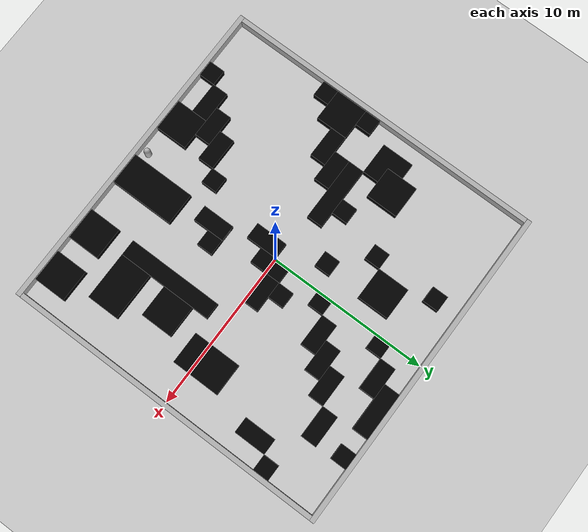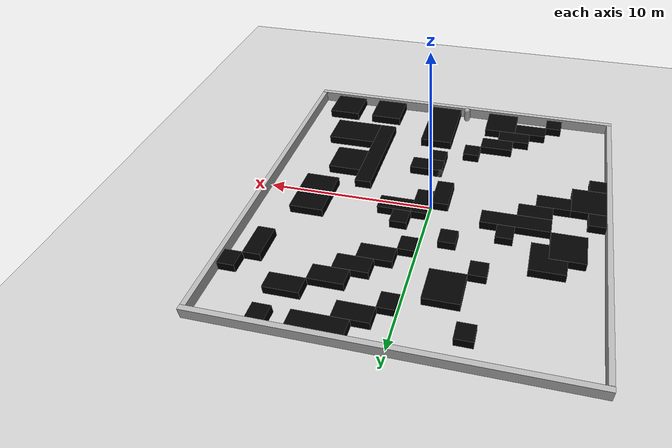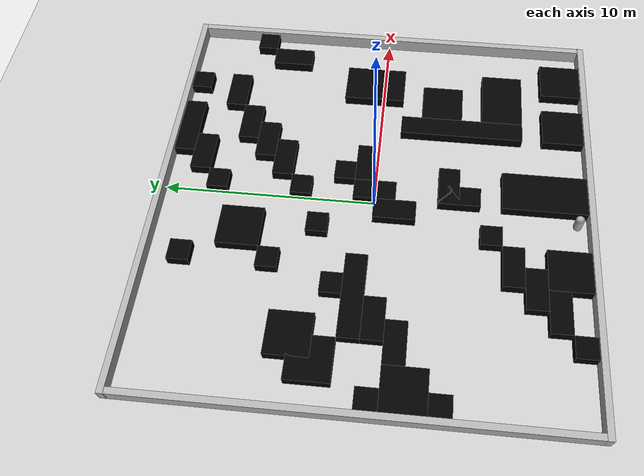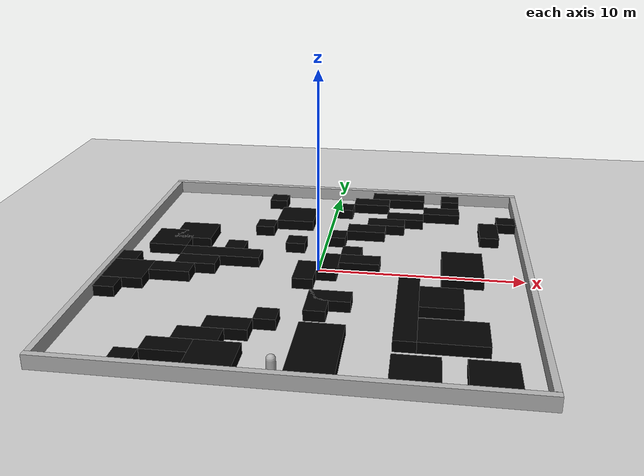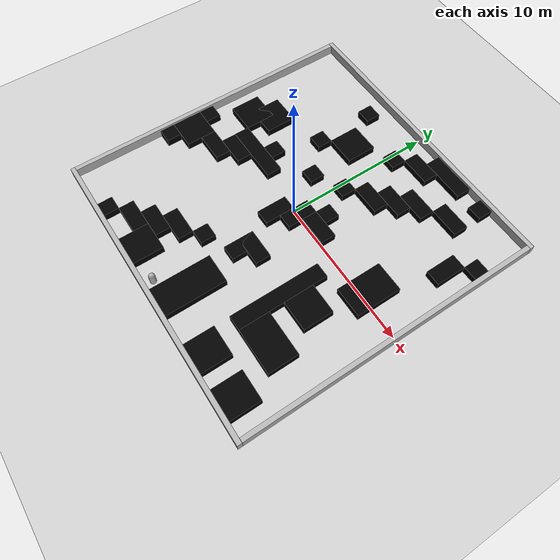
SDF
<sdf version='1.10'>
  <world name='empty'>
    <physics name='1ms' type='ignored'>
      <max_step_size>0.001</max_step_size>
      <real_time_factor>2</real_time_factor>
      <real_time_update_rate>0</real_time_update_rate>
      <type>bullet</type>
    </physics>
    <plugin name='gz::sim::systems::Physics' filename='gz-sim-physics-system'/>
    <plugin name='gz::sim::systems::UserCommands' filename='gz-sim-user-commands-system'/>
    <plugin name='gz::sim::systems::SceneBroadcaster' filename='gz-sim-scene-broadcaster-system'/>
    <plugin name='gz::sim::systems::Contact' filename='gz-sim-contact-system'/>
    <gravity>0 0 -9.8000000000000007</gravity>
    <magnetic_field>5.5644999999999998e-06 2.2875799999999999e-05 -4.2388400000000002e-05</magnetic_field>
    <atmosphere type='adiabatic'/>
    <scene>
      <ambient>0.400000006 0.400000006 0.400000006 1</ambient>
      <background>0.699999988 0.699999988 0.699999988 1</background>
      <shadows>true</shadows>
    </scene>
    <model name='ground_plane'>
      <static>true</static>
      <link name='link'>
        <collision name='collision'>
          <geometry>
            <plane>
              <normal>0 0 1</normal>
              <size>100 100</size>
            </plane>
          </geometry>
          <surface>
            <friction>
              <ode/>
            </friction>
            <bounce/>
            <contact/>
          </surface>
        </collision>
        <visual name='visual'>
          <geometry>
            <plane>
              <normal>0 0 1</normal>
              <size>100 100</size>
            </plane>
          </geometry>
          <material>
            <ambient>0.800000012 0.800000012 0.800000012 1</ambient>
            <diffuse>0.800000012 0.800000012 0.800000012 1</diffuse>
            <specular>0.800000012 0.800000012 0.800000012 1</specular>
          </material>
        </visual>
        <pose>0 0 0 0 0 0</pose>
        <inertial>
          <pose>0 0 0 0 0 0</pose>
          <mass>100</mass>
          <inertia>
            <ixx>1</ixx>
            <ixy>0</ixy>
            <ixz>0</ixz>
            <iyy>1</iyy>
            <iyz>0</iyz>
            <izz>1</izz>
          </inertia>
        </inertial>
        <enable_wind>false</enable_wind>
      </link>
      <pose>0 0 0 0 0 0</pose>
      <self_collide>false</self_collide>
    </model>
    <model name='left_wall'>
      <pose>-10.15 0 0.14999999999999999 0 0 0</pose>
      <link name='left_wall_link'>
        <inertial>
          <inertia>
            <ixx>0.16666</ixx>
            <ixy>0</ixy>
            <ixz>0</ixz>
            <iyy>0.16666</iyy>
            <iyz>0</iyz>
            <izz>0.16666</izz>
          </inertia>
          <mass>1</mass>
          <pose>0 0 0 0 0 0</pose>
        </inertial>
        <collision name='left_wall_collision'>
          <geometry>
            <box>
              <size>0.29999999999999999 20 1</size>
            </box>
          </geometry>
          <surface>
            <friction>
              <ode/>
            </friction>
            <bounce/>
            <contact/>
          </surface>
        </collision>
        <visual name='left_wall_visual'>
          <geometry>
            <box>
              <size>0.29999999999999999 20 1</size>
            </box>
          </geometry>
          <material>
            <ambient>0.300000012 0.300000012 0.300000012 1</ambient>
            <diffuse>0.699999988 0.699999988 0.699999988 1</diffuse>
            <specular>1 1 1 1</specular>
          </material>
        </visual>
        <pose>0 0 0 0 0 0</pose>
        <enable_wind>false</enable_wind>
      </link>
      <static>true</static>
      <self_collide>false</self_collide>
    </model>
    <model name='right_wall'>
      <pose>10.15 0 0.14999999999999999 0 0 0</pose>
      <link name='right_wall_link'>
        <inertial>
          <inertia>
            <ixx>0.16666</ixx>
            <ixy>0</ixy>
            <ixz>0</ixz>
            <iyy>0.16666</iyy>
            <iyz>0</iyz>
            <izz>0.16666</izz>
          </inertia>
          <mass>100</mass>
          <pose>0 0 0 0 0 0</pose>
        </inertial>
        <collision name='right_wall_collision'>
          <geometry>
            <box>
              <size>0.29999999999999999 20 1</size>
            </box>
          </geometry>
          <surface>
            <friction>
              <ode/>
            </friction>
            <bounce/>
            <contact/>
          </surface>
        </collision>
        <visual name='right_wall_visual'>
          <geometry>
            <box>
              <size>0.29999999999999999 20 1</size>
            </box>
          </geometry>
          <material>
            <ambient>0.300000012 0.300000012 0.300000012 1</ambient>
            <diffuse>0.699999988 0.699999988 0.699999988 1</diffuse>
            <specular>1 1 1 1</specular>
          </material>
        </visual>
        <pose>0 0 0 0 0 0</pose>
        <enable_wind>false</enable_wind>
      </link>
      <static>true</static>
      <self_collide>false</self_collide>
    </model>
    <model name='top_wall'>
      <pose>0 10.15 0.14999999999999999 0 0 1.5699999999999998</pose>
      <link name='top_wall_link'>
        <inertial>
          <inertia>
            <ixx>0.16666</ixx>
            <ixy>0</ixy>
            <ixz>0</ixz>
            <iyy>0.16666</iyy>
            <iyz>0</iyz>
            <izz>0.16666</izz>
          </inertia>
          <mass>100</mass>
          <pose>0 0 0 0 0 0</pose>
        </inertial>
        <collision name='top_wall_collision'>
          <geometry>
            <box>
              <size>0.29999999999999999 20 1</size>
            </box>
          </geometry>
          <surface>
            <friction>
              <ode/>
            </friction>
            <bounce/>
            <contact/>
          </surface>
        </collision>
        <visual name='top_wall_visual'>
          <geometry>
            <box>
              <size>0.29999999999999999 20.600000000000001 1</size>
            </box>
          </geometry>
          <material>
            <ambient>0.300000012 0.300000012 0.300000012 1</ambient>
            <diffuse>0.699999988 0.699999988 0.699999988 1</diffuse>
            <specular>1 1 1 1</specular>
          </material>
        </visual>
        <pose>0 0 0 0 0 0</pose>
        <enable_wind>false</enable_wind>
      </link>
      <static>true</static>
      <self_collide>false</self_collide>
    </model>
    <model name='bottom_wall'>
      <pose>0 -10.15 0.14999999999999999 0 0 1.5699999999999998</pose>
      <link name='bottom_wall_link'>
        <inertial>
          <inertia>
            <ixx>0.16666</ixx>
            <ixy>0</ixy>
            <ixz>0</ixz>
            <iyy>0.16666</iyy>
            <iyz>0</iyz>
            <izz>0.16666</izz>
          </inertia>
          <mass>100</mass>
          <pose>0 0 0 0 0 0</pose>
        </inertial>
        <collision name='bottom_wall_collision'>
          <geometry>
            <box>
              <size>0.29999999999999999 20 1</size>
            </box>
          </geometry>
          <surface>
            <friction>
              <ode/>
            </friction>
            <bounce/>
            <contact/>
          </surface>
        </collision>
        <visual name='bottom_wall_visual'>
          <geometry>
            <box>
              <size>0.29999999999999999 20.600000000000001 1</size>
            </box>
          </geometry>
          <material>
            <ambient>0.300000012 0.300000012 0.300000012 1</ambient>
            <diffuse>0.699999988 0.699999988 0.699999988 1</diffuse>
            <specular>1 1 1 1</specular>
          </material>
        </visual>
        <pose>0 0 0 0 0 0</pose>
        <enable_wind>false</enable_wind>
      </link>
      <static>true</static>
      <self_collide>false</self_collide>
    </model>
    <model name='black_box_1x1_1'>
      <static>true</static>
      <pose>6.5 9.5 0 0 0 0</pose>
      <link name='link'>
        <collision name='collision'>
          <geometry>
            <box>
              <size>1 1 1</size>
            </box>
          </geometry>
          <surface>
            <friction>
              <ode/>
            </friction>
            <bounce/>
            <contact/>
          </surface>
        </collision>
        <visual name='visual'>
          <geometry>
            <box>
              <size>1 1 1</size>
            </box>
          </geometry>
          <material>
            <ambient>0 0 0 1</ambient>
          </material>
        </visual>
        <pose>0 0 0 0 0 0</pose>
        <inertial>
          <pose>0 0 0 0 0 0</pose>
          <mass>1</mass>
          <inertia>
            <ixx>1</ixx>
            <ixy>0</ixy>
            <ixz>0</ixz>
            <iyy>1</iyy>
            <iyz>0</iyz>
            <izz>1</izz>
          </inertia>
        </inertial>
        <enable_wind>false</enable_wind>
      </link>
      <self_collide>false</self_collide>
    </model>
    <model name='black_box_1x1_2'>
      <static>true</static>
      <pose>9.5 6.5 0 0 0 0</pose>
      <link name='link'>
        <collision name='collision'>
          <geometry>
            <box>
              <size>1 1 1</size>
            </box>
          </geometry>
          <surface>
            <friction>
              <ode/>
            </friction>
            <bounce/>
            <contact/>
          </surface>
        </collision>
        <visual name='visual'>
          <geometry>
            <box>
              <size>1 1 1</size>
            </box>
          </geometry>
          <material>
            <ambient>0 0 0 1</ambient>
          </material>
        </visual>
        <pose>0 0 0 0 0 0</pose>
        <inertial>
          <pose>0 0 0 0 0 0</pose>
          <mass>1</mass>
          <inertia>
            <ixx>1</ixx>
            <ixy>0</ixy>
            <ixz>0</ixz>
            <iyy>1</iyy>
            <iyz>0</iyz>
            <izz>1</izz>
          </inertia>
        </inertial>
        <enable_wind>false</enable_wind>
      </link>
      <self_collide>false</self_collide>
    </model>
    <model name='black_box_1x1_3'>
      <static>true</static>
      <pose>1.5 1.5 0 0 0 0</pose>
      <link name='link'>
        <collision name='collision'>
          <geometry>
            <box>
              <size>1 1 1</size>
            </box>
          </geometry>
          <surface>
            <friction>
              <ode/>
            </friction>
            <bounce/>
            <contact/>
          </surface>
        </collision>
        <visual name='visual'>
          <geometry>
            <box>
              <size>1 1 1</size>
            </box>
          </geometry>
          <material>
            <ambient>0 0 0 1</ambient>
          </material>
        </visual>
        <pose>0 0 0 0 0 0</pose>
        <inertial>
          <pose>0 0 0 0 0 0</pose>
          <mass>1</mass>
          <inertia>
            <ixx>1</ixx>
            <ixy>0</ixy>
            <ixz>0</ixz>
            <iyy>1</iyy>
            <iyz>0</iyz>
            <izz>1</izz>
          </inertia>
        </inertial>
        <enable_wind>false</enable_wind>
      </link>
      <self_collide>false</self_collide>
    </model>
    <model name='black_box_1x1_4'>
      <static>true</static>
      <pose>0.5 7.5 0 0 0 0</pose>
      <link name='link'>
        <collision name='collision'>
          <geometry>
            <box>
              <size>1 1 1</size>
            </box>
          </geometry>
          <surface>
            <friction>
              <ode/>
            </friction>
            <bounce/>
            <contact/>
          </surface>
        </collision>
        <visual name='visual'>
          <geometry>
            <box>
              <size>1 1 1</size>
            </box>
          </geometry>
          <material>
            <ambient>0 0 0 1</ambient>
          </material>
        </visual>
        <pose>0 0 0 0 0 0</pose>
        <inertial>
          <pose>0 0 0 0 0 0</pose>
          <mass>1</mass>
          <inertia>
            <ixx>1</ixx>
            <ixy>0</ixy>
            <ixz>0</ixz>
            <iyy>1</iyy>
            <iyz>0</iyz>
            <izz>1</izz>
          </inertia>
        </inertial>
        <enable_wind>false</enable_wind>
      </link>
      <self_collide>false</self_collide>
    </model>
    <model name='black_box_1x1_5'>
      <static>true</static>
      <pose>0.5 3.5 0 0 0 0</pose>
      <link name='link'>
        <collision name='collision'>
          <geometry>
            <box>
              <size>1 1 1</size>
            </box>
          </geometry>
          <surface>
            <friction>
              <ode/>
            </friction>
            <bounce/>
            <contact/>
          </surface>
        </collision>
        <visual name='visual'>
          <geometry>
            <box>
              <size>1 1 1</size>
            </box>
          </geometry>
          <material>
            <ambient>0 0 0 1</ambient>
          </material>
        </visual>
        <pose>0 0 0 0 0 0</pose>
        <inertial>
          <pose>0 0 0 0 0 0</pose>
          <mass>1</mass>
          <inertia>
            <ixx>1</ixx>
            <ixy>0</ixy>
            <ixz>0</ixz>
            <iyy>1</iyy>
            <iyz>0</iyz>
            <izz>1</izz>
          </inertia>
        </inertial>
        <enable_wind>false</enable_wind>
      </link>
      <self_collide>false</self_collide>
    </model>
    <model name='black_box_1x1_6'>
      <static>true</static>
      <pose>-1.5 2.5 0 0 0 0</pose>
      <link name='link'>
        <collision name='collision'>
          <geometry>
            <box>
              <size>1 1 1</size>
            </box>
          </geometry>
          <surface>
            <friction>
              <ode/>
            </friction>
            <bounce/>
            <contact/>
          </surface>
        </collision>
        <visual name='visual'>
          <geometry>
            <box>
              <size>1 1 1</size>
            </box>
          </geometry>
          <material>
            <ambient>0 0 0 1</ambient>
          </material>
        </visual>
        <pose>0 0 0 0 0 0</pose>
        <inertial>
          <pose>0 0 0 0 0 0</pose>
          <mass>1</mass>
          <inertia>
            <ixx>1</ixx>
            <ixy>0</ixy>
            <ixz>0</ixz>
            <iyy>1</iyy>
            <iyz>0</iyz>
            <izz>1</izz>
          </inertia>
        </inertial>
        <enable_wind>false</enable_wind>
      </link>
      <self_collide>false</self_collide>
    </model>
    <model name='black_box_1x1_7'>
      <static>true</static>
      <pose>-1.5 -5.5 0 0 0 0</pose>
      <link name='link'>
        <collision name='collision'>
          <geometry>
            <box>
              <size>1 1 1</size>
            </box>
          </geometry>
          <surface>
            <friction>
              <ode/>
            </friction>
            <bounce/>
            <contact/>
          </surface>
        </collision>
        <visual name='visual'>
          <geometry>
            <box>
              <size>1 1 1</size>
            </box>
          </geometry>
          <material>
            <ambient>0 0 0 1</ambient>
          </material>
        </visual>
        <pose>0 0 0 0 0 0</pose>
        <inertial>
          <pose>0 0 0 0 0 0</pose>
          <mass>1</mass>
          <inertia>
            <ixx>1</ixx>
            <ixy>0</ixy>
            <ixz>0</ixz>
            <iyy>1</iyy>
            <iyz>0</iyz>
            <izz>1</izz>
          </inertia>
        </inertial>
        <enable_wind>false</enable_wind>
      </link>
      <self_collide>false</self_collide>
    </model>
    <model name='black_box_1x1_8'>
      <static>true</static>
      <pose>-3.5 8.5 0 0 0 0</pose>
      <link name='link'>
        <collision name='collision'>
          <geometry>
            <box>
              <size>1 1 1</size>
            </box>
          </geometry>
          <surface>
            <friction>
              <ode/>
            </friction>
            <bounce/>
            <contact/>
          </surface>
        </collision>
        <visual name='visual'>
          <geometry>
            <box>
              <size>1 1 1</size>
            </box>
          </geometry>
          <material>
            <ambient>0 0 0 1</ambient>
          </material>
        </visual>
        <pose>0 0 0 0 0 0</pose>
        <inertial>
          <pose>0 0 0 0 0 0</pose>
          <mass>1</mass>
          <inertia>
            <ixx>1</ixx>
            <ixy>0</ixy>
            <ixz>0</ixz>
            <iyy>1</iyy>
            <iyz>0</iyz>
            <izz>1</izz>
          </inertia>
        </inertial>
        <enable_wind>false</enable_wind>
      </link>
      <self_collide>false</self_collide>
    </model>
    <model name='black_box_1x1_9'>
      <static>true</static>
      <pose>-3.5 4.5 0 0 0 0</pose>
      <link name='link'>
        <collision name='collision'>
          <geometry>
            <box>
              <size>1 1 1</size>
            </box>
          </geometry>
          <surface>
            <friction>
              <ode/>
            </friction>
            <bounce/>
            <contact/>
          </surface>
        </collision>
        <visual name='visual'>
          <geometry>
            <box>
              <size>1 1 1</size>
            </box>
          </geometry>
          <material>
            <ambient>0 0 0 1</ambient>
          </material>
        </visual>
        <pose>0 0 0 0 0 0</pose>
        <inertial>
          <pose>0 0 0 0 0 0</pose>
          <mass>1</mass>
          <inertia>
            <ixx>1</ixx>
            <ixy>0</ixy>
            <ixz>0</ixz>
            <iyy>1</iyy>
            <iyz>0</iyz>
            <izz>1</izz>
          </inertia>
        </inertial>
        <enable_wind>false</enable_wind>
      </link>
      <self_collide>false</self_collide>
    </model>
    <model name='black_box_1x1_10'>
      <static>true</static>
      <pose>-4.5 1.5 0 0 0 0</pose>
      <link name='link'>
        <collision name='collision'>
          <geometry>
            <box>
              <size>1 1 1</size>
            </box>
          </geometry>
          <surface>
            <friction>
              <ode/>
            </friction>
            <bounce/>
            <contact/>
          </surface>
        </collision>
        <visual name='visual'>
          <geometry>
            <box>
              <size>1 1 1</size>
            </box>
          </geometry>
          <material>
            <ambient>0 0 0 1</ambient>
          </material>
        </visual>
        <pose>0 0 0 0 0 0</pose>
        <inertial>
          <pose>0 0 0 0 0 0</pose>
          <mass>1</mass>
          <inertia>
            <ixx>1</ixx>
            <ixy>0</ixy>
            <ixz>0</ixz>
            <iyy>1</iyy>
            <iyz>0</iyz>
            <izz>1</izz>
          </inertia>
        </inertial>
        <enable_wind>false</enable_wind>
      </link>
      <self_collide>false</self_collide>
    </model>
    <model name='black_box_1x1_11'>
      <static>true</static>
      <pose>-9.5 -0.5 0 0 0 0</pose>
      <link name='link'>
        <collision name='collision'>
          <geometry>
            <box>
              <size>1 1 1</size>
            </box>
          </geometry>
          <surface>
            <friction>
              <ode/>
            </friction>
            <bounce/>
            <contact/>
          </surface>
        </collision>
        <visual name='visual'>
          <geometry>
            <box>
              <size>1 1 1</size>
            </box>
          </geometry>
          <material>
            <ambient>0 0 0 1</ambient>
          </material>
        </visual>
        <pose>0 0 0 0 0 0</pose>
        <inertial>
          <pose>0 0 0 0 0 0</pose>
          <mass>1</mass>
          <inertia>
            <ixx>1</ixx>
            <ixy>0</ixy>
            <ixz>0</ixz>
            <iyy>1</iyy>
            <iyz>0</iyz>
            <izz>1</izz>
          </inertia>
        </inertial>
        <enable_wind>false</enable_wind>
      </link>
      <self_collide>false</self_collide>
    </model>
    <model name='black_box_1x1_12'>
      <static>true</static>
      <pose>-9.5 -3.5 0 0 0 0</pose>
      <link name='link'>
        <collision name='collision'>
          <geometry>
            <box>
              <size>1 1 1</size>
            </box>
          </geometry>
          <surface>
            <friction>
              <ode/>
            </friction>
            <bounce/>
            <contact/>
          </surface>
        </collision>
        <visual name='visual'>
          <geometry>
            <box>
              <size>1 1 1</size>
            </box>
          </geometry>
          <material>
            <ambient>0 0 0 1</ambient>
          </material>
        </visual>
        <pose>0 0 0 0 0 0</pose>
        <inertial>
          <pose>0 0 0 0 0 0</pose>
          <mass>1</mass>
          <inertia>
            <ixx>1</ixx>
            <ixy>0</ixy>
            <ixz>0</ixz>
            <iyy>1</iyy>
            <iyz>0</iyz>
            <izz>1</izz>
          </inertia>
        </inertial>
        <enable_wind>false</enable_wind>
      </link>
      <self_collide>false</self_collide>
    </model>
    <model name='black_box_1x1_13'>
      <static>true</static>
      <pose>-6.5 -9.5 0 0 0 0</pose>
      <link name='link'>
        <collision name='collision'>
          <geometry>
            <box>
              <size>1 1 1</size>
            </box>
          </geometry>
          <surface>
            <friction>
              <ode/>
            </friction>
            <bounce/>
            <contact/>
          </surface>
        </collision>
        <visual name='visual'>
          <geometry>
            <box>
              <size>1 1 1</size>
            </box>
          </geometry>
          <material>
            <ambient>0 0 0 1</ambient>
          </material>
        </visual>
        <pose>0 0 0 0 0 0</pose>
        <inertial>
          <pose>0 0 0 0 0 0</pose>
          <mass>1</mass>
          <inertia>
            <ixx>1</ixx>
            <ixy>0</ixy>
            <ixz>0</ixz>
            <iyy>1</iyy>
            <iyz>0</iyz>
            <izz>1</izz>
          </inertia>
        </inertial>
        <enable_wind>false</enable_wind>
      </link>
      <self_collide>false</self_collide>
    </model>
    <model name='black_box_1x2_1'>
      <static>true</static>
      <pose>8.5 5 0 0 0 0</pose>
      <link name='link'>
        <collision name='collision'>
          <geometry>
            <box>
              <size>1 2 1</size>
            </box>
          </geometry>
          <surface>
            <friction>
              <ode/>
            </friction>
            <bounce/>
            <contact/>
          </surface>
        </collision>
        <visual name='visual'>
          <geometry>
            <box>
              <size>1 2 1</size>
            </box>
          </geometry>
          <material>
            <ambient>0 0 0 1</ambient>
          </material>
        </visual>
        <pose>0 0 0 0 0 0</pose>
        <inertial>
          <pose>0 0 0 0 0 0</pose>
          <mass>2</mass>
          <inertia>
            <ixx>1</ixx>
            <ixy>0</ixy>
            <ixz>0</ixz>
            <iyy>1</iyy>
            <iyz>0</iyz>
            <izz>1</izz>
          </inertia>
        </inertial>
        <enable_wind>false</enable_wind>
      </link>
      <self_collide>false</self_collide>
    </model>
    <model name='black_box_1x2_2'>
      <static>true</static>
      <pose>0.5 0 0 0 0 0</pose>
      <link name='link'>
        <collision name='collision'>
          <geometry>
            <box>
              <size>1 2 1</size>
            </box>
          </geometry>
          <surface>
            <friction>
              <ode/>
            </friction>
            <bounce/>
            <contact/>
          </surface>
        </collision>
        <visual name='visual'>
          <geometry>
            <box>
              <size>1 2 1</size>
            </box>
          </geometry>
          <material>
            <ambient>0 0 0 1</ambient>
          </material>
        </visual>
        <pose>0 0 0 0 0 0</pose>
        <inertial>
          <pose>0 0 0 0 0 0</pose>
          <mass>2</mass>
          <inertia>
            <ixx>1</ixx>
            <ixy>0</ixy>
            <ixz>0</ixz>
            <iyy>1</iyy>
            <iyz>0</iyz>
            <izz>1</izz>
          </inertia>
        </inertial>
        <enable_wind>false</enable_wind>
      </link>
      <self_collide>false</self_collide>
    </model>
    <model name='black_box_1x2_3'>
      <static>true</static>
      <pose>-0.5 -1 0 0 0 0</pose>
      <link name='link'>
        <collision name='collision'>
          <geometry>
            <box>
              <size>1 2 1</size>
            </box>
          </geometry>
          <surface>
            <friction>
              <ode/>
            </friction>
            <bounce/>
            <contact/>
          </surface>
        </collision>
        <visual name='visual'>
          <geometry>
            <box>
              <size>1 2 1</size>
            </box>
          </geometry>
          <material>
            <ambient>0 0 0 1</ambient>
          </material>
        </visual>
        <pose>0 0 0 0 0 0</pose>
        <inertial>
          <pose>0 0 0 0 0 0</pose>
          <mass>2</mass>
          <inertia>
            <ixx>1</ixx>
            <ixy>0</ixy>
            <ixz>0</ixz>
            <iyy>1</iyy>
            <iyz>0</iyz>
            <izz>1</izz>
          </inertia>
        </inertial>
        <enable_wind>false</enable_wind>
      </link>
      <self_collide>false</self_collide>
    </model>
    <model name='black_box_1x2_4'>
      <static>true</static>
      <pose>0.5 -4 0 0 0 0</pose>
      <link name='link'>
        <collision name='collision'>
          <geometry>
            <box>
              <size>1 2 1</size>
            </box>
          </geometry>
          <surface>
            <friction>
              <ode/>
            </friction>
            <bounce/>
            <contact/>
          </surface>
        </collision>
        <visual name='visual'>
          <geometry>
            <box>
              <size>1 2 1</size>
            </box>
          </geometry>
          <material>
            <ambient>0 0 0 1</ambient>
          </material>
        </visual>
        <pose>0 0 0 0 0 0</pose>
        <inertial>
          <pose>0 0 0 0 0 0</pose>
          <mass>2</mass>
          <inertia>
            <ixx>1</ixx>
            <ixy>0</ixy>
            <ixz>0</ixz>
            <iyy>1</iyy>
            <iyz>0</iyz>
            <izz>1</izz>
          </inertia>
        </inertial>
        <enable_wind>false</enable_wind>
      </link>
      <self_collide>false</self_collide>
    </model>
    <model name='black_box_2x1_1'>
      <static>true</static>
      <pose>2 8.5 0 0 0 0</pose>
      <link name='link'>
        <collision name='collision'>
          <geometry>
            <box>
              <size>2 1 1</size>
            </box>
          </geometry>
          <surface>
            <friction>
              <ode/>
            </friction>
            <bounce/>
            <contact/>
          </surface>
        </collision>
        <visual name='visual'>
          <geometry>
            <box>
              <size>2 1 1</size>
            </box>
          </geometry>
          <material>
            <ambient>0 0 0 1</ambient>
          </material>
        </visual>
        <pose>0 0 0 0 0 0</pose>
        <inertial>
          <pose>0 0 0 0 0 0</pose>
          <mass>2</mass>
          <inertia>
            <ixx>1</ixx>
            <ixy>0</ixy>
            <ixz>0</ixz>
            <iyy>1</iyy>
            <iyz>0</iyz>
            <izz>1</izz>
          </inertia>
        </inertial>
        <enable_wind>false</enable_wind>
      </link>
      <self_collide>false</self_collide>
    </model>
    <model name='black_box_2x1_2'>
      <static>true</static>
      <pose>6 7.5 0 0 0 0</pose>
      <link name='link'>
        <collision name='collision'>
          <geometry>
            <box>
              <size>2 1 1</size>
            </box>
          </geometry>
          <surface>
            <friction>
              <ode/>
            </friction>
            <bounce/>
            <contact/>
          </surface>
        </collision>
        <visual name='visual'>
          <geometry>
            <box>
              <size>2 1 1</size>
            </box>
          </geometry>
          <material>
            <ambient>0 0 0 1</ambient>
          </material>
        </visual>
        <pose>0 0 0 0 0 0</pose>
        <inertial>
          <pose>0 0 0 0 0 0</pose>
          <mass>2</mass>
          <inertia>
            <ixx>1</ixx>
            <ixy>0</ixy>
            <ixz>0</ixz>
            <iyy>1</iyy>
            <iyz>0</iyz>
            <izz>1</izz>
          </inertia>
        </inertial>
        <enable_wind>false</enable_wind>
      </link>
      <self_collide>false</self_collide>
    </model>
    <model name='black_box_2x1_3'>
      <static>true</static>
      <pose>4 6.5 0 0 0 0</pose>
      <link name='link'>
        <collision name='collision'>
          <geometry>
            <box>
              <size>2 1 1</size>
            </box>
          </geometry>
          <surface>
            <friction>
              <ode/>
            </friction>
            <bounce/>
            <contact/>
          </surface>
        </collision>
        <visual name='visual'>
          <geometry>
            <box>
              <size>2 1 1</size>
            </box>
          </geometry>
          <material>
            <ambient>0 0 0 1</ambient>
          </material>
        </visual>
        <pose>0 0 0 0 0 0</pose>
        <inertial>
          <pose>0 0 0 0 0 0</pose>
          <mass>2</mass>
          <inertia>
            <ixx>1</ixx>
            <ixy>0</ixy>
            <ixz>0</ixz>
            <iyy>1</iyy>
            <iyz>0</iyz>
            <izz>1</izz>
          </inertia>
        </inertial>
        <enable_wind>false</enable_wind>
      </link>
      <self_collide>false</self_collide>
    </model>
    <model name='black_box_2x1_4'>
      <static>true</static>
      <pose>3 5.5 0 0 0 0</pose>
      <link name='link'>
        <collision name='collision'>
          <geometry>
            <box>
              <size>2 1 1</size>
            </box>
          </geometry>
          <surface>
            <friction>
              <ode/>
            </friction>
            <bounce/>
            <contact/>
          </surface>
        </collision>
        <visual name='visual'>
          <geometry>
            <box>
              <size>2 1 1</size>
            </box>
          </geometry>
          <material>
            <ambient>0 0 0 1</ambient>
          </material>
        </visual>
        <pose>0 0 0 0 0 0</pose>
        <inertial>
          <pose>0 0 0 0 0 0</pose>
          <mass>2</mass>
          <inertia>
            <ixx>1</ixx>
            <ixy>0</ixy>
            <ixz>0</ixz>
            <iyy>1</iyy>
            <iyz>0</iyz>
            <izz>1</izz>
          </inertia>
        </inertial>
        <enable_wind>false</enable_wind>
      </link>
      <self_collide>false</self_collide>
    </model>
    <model name='black_box_2x1_5'>
      <static>true</static>
      <pose>2 4.5 0 0 0 0</pose>
      <link name='link'>
        <collision name='collision'>
          <geometry>
            <box>
              <size>2 1 1</size>
            </box>
          </geometry>
          <surface>
            <friction>
              <ode/>
            </friction>
            <bounce/>
            <contact/>
          </surface>
        </collision>
        <visual name='visual'>
          <geometry>
            <box>
              <size>2 1 1</size>
            </box>
          </geometry>
          <material>
            <ambient>0 0 0 1</ambient>
          </material>
        </visual>
        <pose>0 0 0 0 0 0</pose>
        <inertial>
          <pose>0 0 0 0 0 0</pose>
          <mass>2</mass>
          <inertia>
            <ixx>1</ixx>
            <ixy>0</ixy>
            <ixz>0</ixz>
            <iyy>1</iyy>
            <iyz>0</iyz>
            <izz>1</izz>
          </inertia>
        </inertial>
        <enable_wind>false</enable_wind>
      </link>
      <self_collide>false</self_collide>
    </model>
    <model name='black_box_2x1_6'>
      <static>true</static>
      <pose>1 -3.5 0 0 0 0</pose>
      <link name='link'>
        <collision name='collision'>
          <geometry>
            <box>
              <size>2 1 1</size>
            </box>
          </geometry>
          <surface>
            <friction>
              <ode/>
            </friction>
            <bounce/>
            <contact/>
          </surface>
        </collision>
        <visual name='visual'>
          <geometry>
            <box>
              <size>2 1 1</size>
            </box>
          </geometry>
          <material>
            <ambient>0 0 0 1</ambient>
          </material>
        </visual>
        <pose>0 0 0 0 0 0</pose>
        <inertial>
          <pose>0 0 0 0 0 0</pose>
          <mass>2</mass>
          <inertia>
            <ixx>1</ixx>
            <ixy>0</ixy>
            <ixz>0</ixz>
            <iyy>1</iyy>
            <iyz>0</iyz>
            <izz>1</izz>
          </inertia>
        </inertial>
        <enable_wind>false</enable_wind>
      </link>
      <self_collide>false</self_collide>
    </model>
    <model name='black_box_2x1_7'>
      <static>true</static>
      <pose>-6 -0.5 0 0 0 0</pose>
      <link name='link'>
        <collision name='collision'>
          <geometry>
            <box>
              <size>2 1 1</size>
            </box>
          </geometry>
          <surface>
            <friction>
              <ode/>
            </friction>
            <bounce/>
            <contact/>
          </surface>
        </collision>
        <visual name='visual'>
          <geometry>
            <box>
              <size>2 1 1</size>
            </box>
          </geometry>
          <material>
            <ambient>0 0 0 1</ambient>
          </material>
        </visual>
        <pose>0 0 0 0 0 0</pose>
        <inertial>
          <pose>0 0 0 0 0 0</pose>
          <mass>2</mass>
          <inertia>
            <ixx>1</ixx>
            <ixy>0</ixy>
            <ixz>0</ixz>
            <iyy>1</iyy>
            <iyz>0</iyz>
            <izz>1</izz>
          </inertia>
        </inertial>
        <enable_wind>false</enable_wind>
      </link>
      <self_collide>false</self_collide>
    </model>
    <model name='black_box_2x1_8'>
      <static>true</static>
      <pose>-3 -6.5 0 0 0 0</pose>
      <link name='link'>
        <collision name='collision'>
          <geometry>
            <box>
              <size>2 1 1</size>
            </box>
          </geometry>
          <surface>
            <friction>
              <ode/>
            </friction>
            <bounce/>
            <contact/>
          </surface>
        </collision>
        <visual name='visual'>
          <geometry>
            <box>
              <size>2 1 1</size>
            </box>
          </geometry>
          <material>
            <ambient>0 0 0 1</ambient>
          </material>
        </visual>
        <pose>0 0 0 0 0 0</pose>
        <inertial>
          <pose>0 0 0 0 0 0</pose>
          <mass>2</mass>
          <inertia>
            <ixx>1</ixx>
            <ixy>0</ixy>
            <ixz>0</ixz>
            <iyy>1</iyy>
            <iyz>0</iyz>
            <izz>1</izz>
          </inertia>
        </inertial>
        <enable_wind>false</enable_wind>
      </link>
      <self_collide>false</self_collide>
    </model>
    <model name='black_box_2x1_9'>
      <static>true</static>
      <pose>-4 -7.5 0 0 0 0</pose>
      <link name='link'>
        <collision name='collision'>
          <geometry>
            <box>
              <size>2 1 1</size>
            </box>
          </geometry>
          <surface>
            <friction>
              <ode/>
            </friction>
            <bounce/>
            <contact/>
          </surface>
        </collision>
        <visual name='visual'>
          <geometry>
            <box>
              <size>2 1 1</size>
            </box>
          </geometry>
          <material>
            <ambient>0 0 0 1</ambient>
          </material>
        </visual>
        <pose>0 0 0 0 0 0</pose>
        <inertial>
          <pose>0 0 0 0 0 0</pose>
          <mass>2</mass>
          <inertia>
            <ixx>1</ixx>
            <ixy>0</ixy>
            <ixz>0</ixz>
            <iyy>1</iyy>
            <iyz>0</iyz>
            <izz>1</izz>
          </inertia>
        </inertial>
        <enable_wind>false</enable_wind>
      </link>
      <self_collide>false</self_collide>
    </model>
    <model name='black_box_2x1_10'>
      <static>true</static>
      <pose>-5 -8.5 0 0 0 0</pose>
      <link name='link'>
        <collision name='collision'>
          <geometry>
            <box>
              <size>2 1 1</size>
            </box>
          </geometry>
          <surface>
            <friction>
              <ode/>
            </friction>
            <bounce/>
            <contact/>
          </surface>
        </collision>
        <visual name='visual'>
          <geometry>
            <box>
              <size>2 1 1</size>
            </box>
          </geometry>
          <material>
            <ambient>0 0 0 1</ambient>
          </material>
        </visual>
        <pose>0 0 0 0 0 0</pose>
        <inertial>
          <pose>0 0 0 0 0 0</pose>
          <mass>2</mass>
          <inertia>
            <ixx>1</ixx>
            <ixy>0</ixy>
            <ixz>0</ixz>
            <iyy>1</iyy>
            <iyz>0</iyz>
            <izz>1</izz>
          </inertia>
        </inertial>
        <enable_wind>false</enable_wind>
      </link>
      <self_collide>false</self_collide>
    </model>
    <model name='black_box_2x1_11'>
      <static>true</static>
      <pose>2 0.5 0 0 0 0</pose>
      <link name='link'>
        <collision name='collision'>
          <geometry>
            <box>
              <size>2 1 1</size>
            </box>
          </geometry>
          <surface>
            <friction>
              <ode/>
            </friction>
            <bounce/>
            <contact/>
          </surface>
        </collision>
        <visual name='visual'>
          <geometry>
            <box>
              <size>2 1 1</size>
            </box>
          </geometry>
          <material>
            <ambient>0 0 0 1</ambient>
          </material>
        </visual>
        <pose>0 0 0 0 0 0</pose>
        <inertial>
          <pose>0 0 0 0 0 0</pose>
          <mass>2</mass>
          <inertia>
            <ixx>1</ixx>
            <ixy>0</ixy>
            <ixz>0</ixz>
            <iyy>1</iyy>
            <iyz>0</iyz>
            <izz>1</izz>
          </inertia>
        </inertial>
        <enable_wind>false</enable_wind>
      </link>
      <self_collide>false</self_collide>
    </model>
    <model name='black_box_2x1_12'>
      <static>true</static>
      <pose>-7 -1.5 0 0 0 0</pose>
      <link name='link'>
        <collision name='collision'>
          <geometry>
            <box>
              <size>2 1 1</size>
            </box>
          </geometry>
          <surface>
            <friction>
              <ode/>
            </friction>
            <bounce/>
            <contact/>
          </surface>
        </collision>
        <visual name='visual'>
          <geometry>
            <box>
              <size>2 1 1</size>
            </box>
          </geometry>
          <material>
            <ambient>0 0 0 1</ambient>
          </material>
        </visual>
        <pose>0 0 0 0 0 0</pose>
        <inertial>
          <pose>0 0 0 0 0 0</pose>
          <mass>2</mass>
          <inertia>
            <ixx>1</ixx>
            <ixy>0</ixy>
            <ixz>0</ixz>
            <iyy>1</iyy>
            <iyz>0</iyz>
            <izz>1</izz>
          </inertia>
        </inertial>
        <enable_wind>false</enable_wind>
      </link>
      <self_collide>false</self_collide>
    </model>
    <model name='black_box_3x1_1'>
      <static>true</static>
      <pose>3.5 9.5 0 0 0 0</pose>
      <link name='link'>
        <collision name='collision'>
          <geometry>
            <box>
              <size>3 1 1</size>
            </box>
          </geometry>
          <surface>
            <friction>
              <ode/>
            </friction>
            <bounce/>
            <contact/>
          </surface>
        </collision>
        <visual name='visual'>
          <geometry>
            <box>
              <size>3 1 1</size>
            </box>
          </geometry>
          <material>
            <ambient>0 0 0 1</ambient>
          </material>
        </visual>
        <pose>0 0 0 0 0 0</pose>
        <inertial>
          <pose>0 0 0 0 0 0</pose>
          <mass>3</mass>
          <inertia>
            <ixx>1</ixx>
            <ixy>0</ixy>
            <ixz>0</ixz>
            <iyy>1</iyy>
            <iyz>0</iyz>
            <izz>1</izz>
          </inertia>
        </inertial>
        <enable_wind>false</enable_wind>
      </link>
      <self_collide>false</self_collide>
    </model>
    <model name='black_box_4x1_1'>
      <static>true</static>
      <pose>-5 0.5 0 0 0 0</pose>
      <link name='link'>
        <collision name='collision'>
          <geometry>
            <box>
              <size>4 1 1</size>
            </box>
          </geometry>
          <surface>
            <friction>
              <ode/>
            </friction>
            <bounce/>
            <contact/>
          </surface>
        </collision>
        <visual name='visual'>
          <geometry>
            <box>
              <size>4 1 1</size>
            </box>
          </geometry>
          <material>
            <ambient>0 0 0 1</ambient>
          </material>
        </visual>
        <pose>0 0 0 0 0 0</pose>
        <inertial>
          <pose>0 0 0 0 0 0</pose>
          <mass>4</mass>
          <inertia>
            <ixx>1</ixx>
            <ixy>0</ixy>
            <ixz>0</ixz>
            <iyy>1</iyy>
            <iyz>0</iyz>
            <izz>1</izz>
          </inertia>
        </inertial>
        <enable_wind>false</enable_wind>
      </link>
      <self_collide>false</self_collide>
    </model>
    <model name='black_box_2x2_1'>
      <static>true</static>
      <pose>8 -9 0 0 0 0</pose>
      <link name='link'>
        <collision name='collision'>
          <geometry>
            <box>
              <size>2 2 1</size>
            </box>
          </geometry>
          <surface>
            <friction>
              <ode/>
            </friction>
            <bounce/>
            <contact/>
          </surface>
        </collision>
        <visual name='visual'>
          <geometry>
            <box>
              <size>2 2 1</size>
            </box>
          </geometry>
          <material>
            <ambient>0 0 0 1</ambient>
          </material>
        </visual>
        <pose>0 0 0 0 0 0</pose>
        <inertial>
          <pose>0 0 0 0 0 0</pose>
          <mass>4</mass>
          <inertia>
            <ixx>1</ixx>
            <ixy>0</ixy>
            <ixz>0</ixz>
            <iyy>1</iyy>
            <iyz>0</iyz>
            <izz>1</izz>
          </inertia>
        </inertial>
        <enable_wind>false</enable_wind>
      </link>
      <self_collide>false</self_collide>
    </model>
    <model name='black_box_2x2_2'>
      <static>true</static>
      <pose>5 -9 0 0 0 0</pose>
      <link name='link'>
        <collision name='collision'>
          <geometry>
            <box>
              <size>2 2 1</size>
            </box>
          </geometry>
          <surface>
            <friction>
              <ode/>
            </friction>
            <bounce/>
            <contact/>
          </surface>
        </collision>
        <visual name='visual'>
          <geometry>
            <box>
              <size>2 2 1</size>
            </box>
          </geometry>
          <material>
            <ambient>0 0 0 1</ambient>
          </material>
        </visual>
        <pose>0 0 0 0 0 0</pose>
        <inertial>
          <pose>0 0 0 0 0 0</pose>
          <mass>4</mass>
          <inertia>
            <ixx>1</ixx>
            <ixy>0</ixy>
            <ixz>0</ixz>
            <iyy>1</iyy>
            <iyz>0</iyz>
            <izz>1</izz>
          </inertia>
        </inertial>
        <enable_wind>false</enable_wind>
      </link>
      <self_collide>false</self_collide>
    </model>
    <model name='black_box_2x2_3'>
      <static>true</static>
      <pose>-2 6 0 0 0 0</pose>
      <link name='link'>
        <collision name='collision'>
          <geometry>
            <box>
              <size>2 2 1</size>
            </box>
          </geometry>
          <surface>
            <friction>
              <ode/>
            </friction>
            <bounce/>
            <contact/>
          </surface>
        </collision>
        <visual name='visual'>
          <geometry>
            <box>
              <size>2 2 1</size>
            </box>
          </geometry>
          <material>
            <ambient>0 0 0 1</ambient>
          </material>
        </visual>
        <pose>0 0 0 0 0 0</pose>
        <inertial>
          <pose>0 0 0 0 0 0</pose>
          <mass>4</mass>
          <inertia>
            <ixx>1</ixx>
            <ixy>0</ixy>
            <ixz>0</ixz>
            <iyy>1</iyy>
            <iyz>0</iyz>
            <izz>1</izz>
          </inertia>
        </inertial>
        <enable_wind>false</enable_wind>
      </link>
      <self_collide>false</self_collide>
    </model>
    <model name='black_box_2x2_4'>
      <static>true</static>
      <pose>-7 3 0 0 0 0</pose>
      <link name='link'>
        <collision name='collision'>
          <geometry>
            <box>
              <size>2 2 1</size>
            </box>
          </geometry>
          <surface>
            <friction>
              <ode/>
            </friction>
            <bounce/>
            <contact/>
          </surface>
        </collision>
        <visual name='visual'>
          <geometry>
            <box>
              <size>2 2 1</size>
            </box>
          </geometry>
          <material>
            <ambient>0 0 0 1</ambient>
          </material>
        </visual>
        <pose>0 0 0 0 0 0</pose>
        <inertial>
          <pose>0 0 0 0 0 0</pose>
          <mass>4</mass>
          <inertia>
            <ixx>1</ixx>
            <ixy>0</ixy>
            <ixz>0</ixz>
            <iyy>1</iyy>
            <iyz>0</iyz>
            <izz>1</izz>
          </inertia>
        </inertial>
        <enable_wind>false</enable_wind>
      </link>
      <self_collide>false</self_collide>
    </model>
    <model name='black_box_2x2_5'>
      <static>true</static>
      <pose>-8 2 0 0 0 0</pose>
      <link name='link'>
        <collision name='collision'>
          <geometry>
            <box>
              <size>2 2 1</size>
            </box>
          </geometry>
          <surface>
            <friction>
              <ode/>
            </friction>
            <bounce/>
            <contact/>
          </surface>
        </collision>
        <visual name='visual'>
          <geometry>
            <box>
              <size>2 2 1</size>
            </box>
          </geometry>
          <material>
            <ambient>0 0 0 1</ambient>
          </material>
        </visual>
        <pose>0 0 0 0 0 0</pose>
        <inertial>
          <pose>0 0 0 0 0 0</pose>
          <mass>4</mass>
          <inertia>
            <ixx>1</ixx>
            <ixy>0</ixy>
            <ixz>0</ixz>
            <iyy>1</iyy>
            <iyz>0</iyz>
            <izz>1</izz>
          </inertia>
        </inertial>
        <enable_wind>false</enable_wind>
      </link>
      <self_collide>false</self_collide>
    </model>
    <model name='black_box_2x2_6'>
      <static>true</static>
      <pose>6 -3 0 0 0 0</pose>
      <link name='link'>
        <collision name='collision'>
          <geometry>
            <box>
              <size>2 2 1</size>
            </box>
          </geometry>
          <surface>
            <friction>
              <ode/>
            </friction>
            <bounce/>
            <contact/>
          </surface>
        </collision>
        <visual name='visual'>
          <geometry>
            <box>
              <size>2 2 1</size>
            </box>
          </geometry>
          <material>
            <ambient>0 0 0 1</ambient>
          </material>
        </visual>
        <pose>0 0 0 0 0 0</pose>
        <inertial>
          <pose>0 0 0 0 0 0</pose>
          <mass>4</mass>
          <inertia>
            <ixx>1</ixx>
            <ixy>0</ixy>
            <ixz>0</ixz>
            <iyy>1</iyy>
            <iyz>0</iyz>
            <izz>1</izz>
          </inertia>
        </inertial>
        <enable_wind>false</enable_wind>
      </link>
      <self_collide>false</self_collide>
    </model>
    <model name='black_box_2x2_7'>
      <static>true</static>
      <pose>-3 -9 0 0 0 0</pose>
      <link name='link'>
        <collision name='collision'>
          <geometry>
            <box>
              <size>2 2 1</size>
            </box>
          </geometry>
          <surface>
            <friction>
              <ode/>
            </friction>
            <bounce/>
            <contact/>
          </surface>
        </collision>
        <visual name='visual'>
          <geometry>
            <box>
              <size>2 2 1</size>
            </box>
          </geometry>
          <material>
            <ambient>0 0 0 1</ambient>
          </material>
        </visual>
        <pose>0 0 0 0 0 0</pose>
        <inertial>
          <pose>0 0 0 0 0 0</pose>
          <mass>4</mass>
          <inertia>
            <ixx>1</ixx>
            <ixy>0</ixy>
            <ixz>0</ixz>
            <iyy>1</iyy>
            <iyz>0</iyz>
            <izz>1</izz>
          </inertia>
        </inertial>
        <enable_wind>false</enable_wind>
      </link>
      <self_collide>false</self_collide>
    </model>
    <model name='black_box_2x2_8'>
      <static>true</static>
      <pose>-9 -2 0 0 0 0</pose>
      <link name='link'>
        <collision name='collision'>
          <geometry>
            <box>
              <size>2 2 1</size>
            </box>
          </geometry>
          <surface>
            <friction>
              <ode/>
            </friction>
            <bounce/>
            <contact/>
          </surface>
        </collision>
        <visual name='visual'>
          <geometry>
            <box>
              <size>2 2 1</size>
            </box>
          </geometry>
          <material>
            <ambient>0 0 0 1</ambient>
          </material>
        </visual>
        <pose>0 0 0 0 0 0</pose>
        <inertial>
          <pose>0 0 0 0 0 0</pose>
          <mass>4</mass>
          <inertia>
            <ixx>1</ixx>
            <ixy>0</ixy>
            <ixz>0</ixz>
            <iyy>1</iyy>
            <iyz>0</iyz>
            <izz>1</izz>
          </inertia>
        </inertial>
        <enable_wind>false</enable_wind>
      </link>
      <self_collide>false</self_collide>
    </model>
    <model name='black_box_2x3_1'>
      <static>true</static>
      <pose>7 0.5 0 0 0 0</pose>
      <link name='link'>
        <collision name='collision'>
          <geometry>
            <box>
              <size>2 3 1</size>
            </box>
          </geometry>
          <surface>
            <friction>
              <ode/>
            </friction>
            <bounce/>
            <contact/>
          </surface>
        </collision>
        <visual name='visual'>
          <geometry>
            <box>
              <size>2 3 1</size>
            </box>
          </geometry>
          <material>
            <ambient>0 0 0 1</ambient>
          </material>
        </visual>
        <pose>0 0 0 0 0 0</pose>
        <inertial>
          <pose>0 0 0 0 0 0</pose>
          <mass>6</mass>
          <inertia>
            <ixx>1</ixx>
            <ixy>0</ixy>
            <ixz>0</ixz>
            <iyy>1</iyy>
            <iyz>0</iyz>
            <izz>1</izz>
          </inertia>
        </inertial>
        <enable_wind>false</enable_wind>
      </link>
      <self_collide>false</self_collide>
    </model>
    <model name='black_box_2x4_1'>
      <static>true</static>
      <pose>1 -8 0 0 0 0</pose>
      <link name='link'>
        <collision name='collision'>
          <geometry>
            <box>
              <size>2 4 1</size>
            </box>
          </geometry>
          <surface>
            <friction>
              <ode/>
            </friction>
            <bounce/>
            <contact/>
          </surface>
        </collision>
        <visual name='visual'>
          <geometry>
            <box>
              <size>2 4 1</size>
            </box>
          </geometry>
          <material>
            <ambient>0 0 0 1</ambient>
          </material>
        </visual>
        <pose>0 0 0 0 0 0</pose>
        <inertial>
          <pose>0 0 0 0 0 0</pose>
          <mass>8</mass>
          <inertia>
            <ixx>1</ixx>
            <ixy>0</ixy>
            <ixz>0</ixz>
            <iyy>1</iyy>
            <iyz>0</iyz>
            <izz>1</izz>
          </inertia>
        </inertial>
        <enable_wind>false</enable_wind>
      </link>
      <self_collide>false</self_collide>
    </model>
    <model name='black_box_3x2_1'>
      <static>true</static>
      <pose>6.5 -6 0 0 0 0</pose>
      <link name='link'>
        <collision name='collision'>
          <geometry>
            <box>
              <size>3 2 1</size>
            </box>
          </geometry>
          <surface>
            <friction>
              <ode/>
            </friction>
            <bounce/>
            <contact/>
          </surface>
        </collision>
        <visual name='visual'>
          <geometry>
            <box>
              <size>3 2 1</size>
            </box>
          </geometry>
          <material>
            <ambient>0 0 0 1</ambient>
          </material>
        </visual>
        <pose>0 0 0 0 0 0</pose>
        <inertial>
          <pose>0 0 0 0 0 0</pose>
          <mass>6</mass>
          <inertia>
            <ixx>1</ixx>
            <ixy>0</ixy>
            <ixz>0</ixz>
            <iyy>1</iyy>
            <iyz>0</iyz>
            <izz>1</izz>
          </inertia>
        </inertial>
        <enable_wind>false</enable_wind>
      </link>
      <self_collide>false</self_collide>
    </model>
    <model name='black_box_1x6_1'>
      <static>true</static>
      <pose>4.5 -4 0 0 0 0</pose>
      <link name='link'>
        <collision name='collision'>
          <geometry>
            <box>
              <size>1 6 1</size>
            </box>
          </geometry>
          <surface>
            <friction>
              <ode/>
            </friction>
            <bounce/>
            <contact/>
          </surface>
        </collision>
        <visual name='visual'>
          <geometry>
            <box>
              <size>1 6 1</size>
            </box>
          </geometry>
          <material>
            <ambient>0 0 0 1</ambient>
          </material>
        </visual>
        <pose>0 0 0 0 0 0</pose>
        <inertial>
          <pose>0 0 0 0 0 0</pose>
          <mass>4</mass>
          <inertia>
            <ixx>1</ixx>
            <ixy>0</ixy>
            <ixz>0</ixz>
            <iyy>1</iyy>
            <iyz>0</iyz>
            <izz>1</izz>
          </inertia>
        </inertial>
        <enable_wind>false</enable_wind>
      </link>
      <self_collide>false</self_collide>
    </model>
    <model name='capsule'>
      <pose>-0.5 -9.5 0.5 0 0 0</pose>
      <link name='capsule_link'>
        <inertial>
          <inertia>
            <ixx>0.074153999999999998</ixx>
            <ixy>0</ixy>
            <ixz>0</ixz>
            <iyy>0.074153999999999998</iyy>
            <iyz>0</iyz>
            <izz>0.018769000000000001</izz>
          </inertia>
          <mass>1</mass>
          <pose>0 0 0 0 0 0</pose>
        </inertial>
        <visual name='capsule_visual'>
          <geometry>
            <capsule>
              <radius>0.20000000000000001</radius>
              <length>0.59999999999999998</length>
            </capsule>
          </geometry>
          <material>
            <ambient>0.300000012 0.300000012 0.300000012 1</ambient>
            <diffuse>0.699999988 0.699999988 0.699999988 1</diffuse>
            <specular>1 1 1 1</specular>
          </material>
        </visual>
        <pose>0 0 0 0 0 0</pose>
        <enable_wind>false</enable_wind>
      </link>
      <static>true</static>
      <self_collide>false</self_collide>
    </model>
    <light name='sun' type='directional'>
      <pose>0 0 10 0 0 0</pose>
      <cast_shadows>true</cast_shadows>
      <intensity>1</intensity>
      <direction>-0.5 0.10000000000000001 -0.90000000000000002</direction>
      <diffuse>0.800000012 0.800000012 0.800000012 1</diffuse>
      <specular>0.200000003 0.200000003 0.200000003 1</specular>
      <attenuation>
        <range>1000</range>
        <linear>0.01</linear>
        <constant>0.90000000000000002</constant>
        <quadratic>0.001</quadratic>
      </attenuation>
      <spot>
        <inner_angle>0</inner_angle>
        <outer_angle>0</outer_angle>
        <falloff>0</falloff>
      </spot>
    </light>
  </world>
</sdf>
